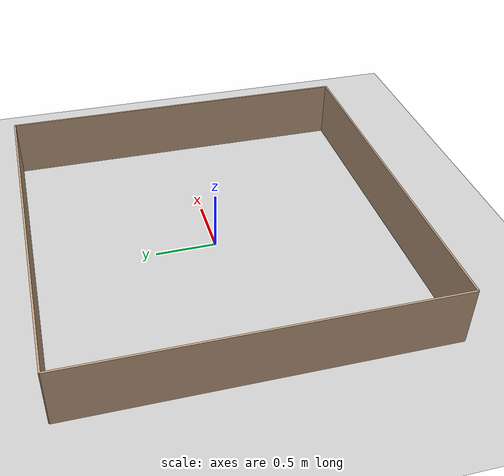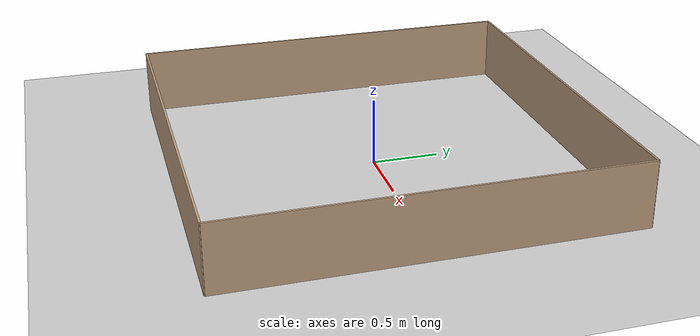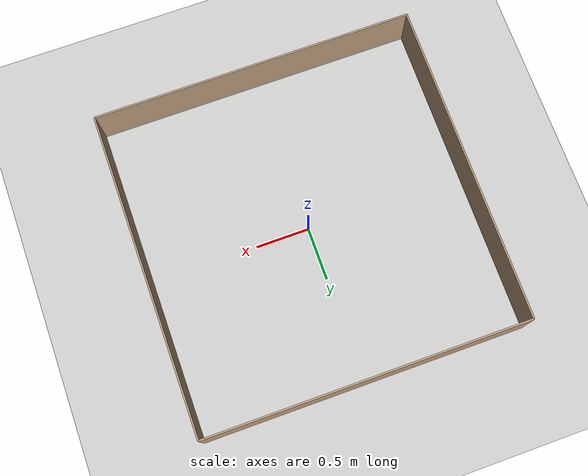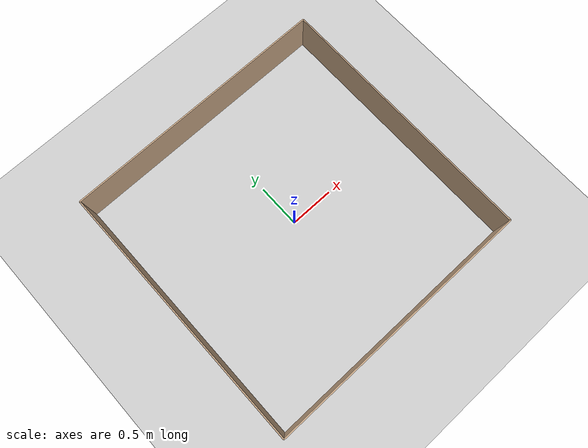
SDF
<sdf version="1.9">
 <world name="robot_world">
  <physics name="1ms" type="ignored">
   <max_step_size>0.001</max_step_size>
   <real_time_factor>1.0</real_time_factor>
   <real_time_update_rate>1000</real_time_update_rate>
  </physics>
  <plugin filename="gz-sim-physics-system" name="gz::sim::systems::Physics"/>
  <plugin filename="gz-sim-user-commands-system" name="gz::sim::systems::UserCommands"/>
  <plugin filename="gz-sim-scene-broadcaster-system" name="gz::sim::systems::SceneBroadcaster"/>
  <plugin filename="gz-sim-sensors-system" name="gz::sim::systems::Sensors">
   <render_engine>ogre2</render_engine>
  </plugin>
  <plugin filename="gz-sim-contact-system" name="gz::sim::systems::Contact"/>
  <light type="directional" name="sun">
   <pose>0 0 10 0 0 0</pose>
   <diffuse>0.8 0.8 0.8 1</diffuse>
   <specular>0.2 0.2 0.2 1</specular>
   <attenuation>
    <range>1000</range>
    <constant>0.9</constant>
    <linear>0.01</linear>
    <quadratic>0.001</quadratic>
   </attenuation>
   <direction>-0.5 0.1 -0.9</direction>
  </light>
  <model name="ground_plane">
   <static>true</static>
   <link name="link">
    <collision name="collision">
     <geometry><plane><normal>0 0 1</normal><size>100 100</size></plane></geometry>
    </collision>
    <visual name="visual">
     <geometry><plane><normal>0 0 1</normal><size>100 100</size></plane></geometry>
     <material>
      <ambient>0.8 0.8 0.8 1</ambient>
      <diffuse>0.8 0.8 0.8 1</diffuse>
      <specular>0.8 0.8 0.8 1</specular>
     </material>
    </visual>
   </link>
  </model>
  <model name="wall_right">
   <static>true</static>
   <pose>-1.5 0 0.25 0 0 0</pose>
   <link name="link">
    <collision name="collision"><geometry><box><size>0.015 3 0.5</size></box></geometry></collision>
    <visual name="visual">
     <geometry><box><size>0.015 3 0.5</size></box></geometry>
     <material>
      <ambient>0.769 0.643 0.518 1</ambient>
      <diffuse>0.769 0.643 0.518 1</diffuse>
      <specular>0.769 0.643 0.518 1</specular>
     </material>
    </visual>
   </link>
  </model>
  <model name="wall_left">
   <static>true</static>
   <pose>1.5 0 0.25 0 0 0</pose>
   <link name="link">
    <collision name="collision"><geometry><box><size>0.015 3 0.5</size></box></geometry></collision>
    <visual name="visual">
     <geometry><box><size>0.015 3 0.5</size></box></geometry>
     <material>
      <ambient>0.769 0.643 0.518 1</ambient>
      <diffuse>0.769 0.643 0.518 1</diffuse>
      <specular>0.769 0.643 0.518 1</specular>
     </material>
    </visual>
   </link>
  </model>
  <model name="wall_front">
   <static>true</static>
   <pose>0 1.50 0.25 0 0 0</pose>
   <link name="link">
    <collision name="collision"><geometry><box><size>3 0.015 0.5</size></box></geometry></collision>
    <visual name="visual">
     <geometry><box><size>3 0.015 0.5</size></box></geometry>
     <material>
      <ambient>0.769 0.643 0.518 1</ambient>
      <diffuse>0.769 0.643 0.518 1</diffuse>
      <specular>0.769 0.643 0.518 1</specular>
     </material>
    </visual>
   </link>
  </model>
  <model name="wall_back">
   <static>true</static>
   <pose>0 -1.50 0.25 0 0 0</pose>
   <link name="link">
    <collision name="collision"><geometry><box><size>3 0.015 0.5</size></box></geometry></collision>
    <visual name="visual">
     <geometry><box><size>3 0.015 0.5</size></box></geometry>
     <material>
      <ambient>0.769 0.643 0.518 1</ambient>
      <diffuse>0.769 0.643 0.518 1</diffuse>
      <specular>0.769 0.643 0.518 1</specular>
     </material>
    </visual>
   </link>
  </model>
  <plugin filename="gz-sim-triggered-publisher-system" name="gz::sim::systems::TriggeredPublisher">
   <input type="gz.msgs.Int32" topic="/keyboard/keypress"><match field="data">87</match></input>
   <output type="gz.msgs.Twist" topic="/cmd_vel">linear: {x: 0.5}, angular: {z: 0.0}</output>
  </plugin>
  <plugin filename="gz-sim-triggered-publisher-system" name="gz::sim::systems::TriggeredPublisher">
   <input type="gz.msgs.Int32" topic="/keyboard/keypress"><match field="data">16777235</match></input>
   <output type="gz.msgs.Twist" topic="/cmd_vel">linear: {x: 0.5}, angular: {z: 0.0}</output>
  </plugin>
  <plugin filename="gz-sim-triggered-publisher-system" name="gz::sim::systems::TriggeredPublisher">
   <input type="gz.msgs.Int32" topic="/keyboard/keypress"><match field="data">83</match></input>
   <output type="gz.msgs.Twist" topic="/cmd_vel">linear: {x: -0.5}, angular: {z: 0.0}</output>
  </plugin>
  <plugin filename="gz-sim-triggered-publisher-system" name="gz::sim::systems::TriggeredPublisher">
   <input type="gz.msgs.Int32" topic="/keyboard/keypress"><match field="data">16777237</match></input>
   <output type="gz.msgs.Twist" topic="/cmd_vel">linear: {x: -0.5}, angular: {z: 0.0}</output>
  </plugin>
  <plugin filename="gz-sim-triggered-publisher-system" name="gz::sim::systems::TriggeredPublisher">
   <input type="gz.msgs.Int32" topic="/keyboard/keypress"><match field="data">65</match></input>
   <output type="gz.msgs.Twist" topic="/cmd_vel">linear: {x: 0.0}, angular: {z: 0.5}</output>
  </plugin>
  <plugin filename="gz-sim-triggered-publisher-system" name="gz::sim::systems::TriggeredPublisher">
   <input type="gz.msgs.Int32" topic="/keyboard/keypress"><match field="data">16777234</match></input>
   <output type="gz.msgs.Twist" topic="/cmd_vel">linear: {x: 0.0}, angular: {z: 0.5}</output>
  </plugin>
  <plugin filename="gz-sim-triggered-publisher-system" name="gz::sim::systems::TriggeredPublisher">
   <input type="gz.msgs.Int32" topic="/keyboard/keypress"><match field="data">68</match></input>
   <output type="gz.msgs.Twist" topic="/cmd_vel">linear: {x: 0.0}, angular: {z: -0.5}</output>
  </plugin>
  <plugin filename="gz-sim-triggered-publisher-system" name="gz::sim::systems::TriggeredPublisher">
   <input type="gz.msgs.Int32" topic="/keyboard/keypress"><match field="data">16777236</match></input>
   <output type="gz.msgs.Twist" topic="/cmd_vel">linear: {x: 0.0}, angular: {z: -0.5}</output>
  </plugin>
 </world>
</sdf>
